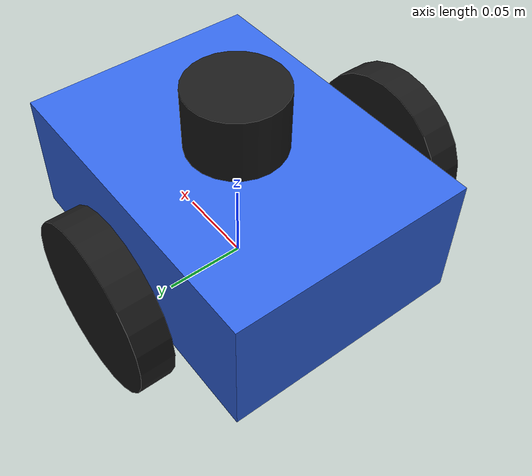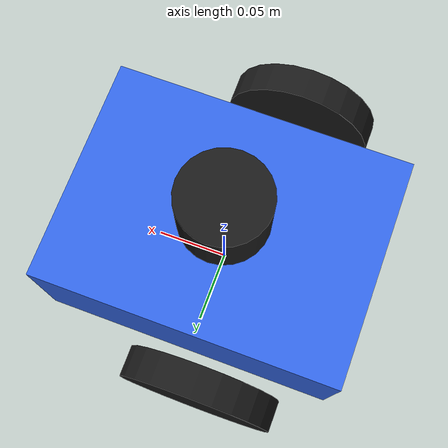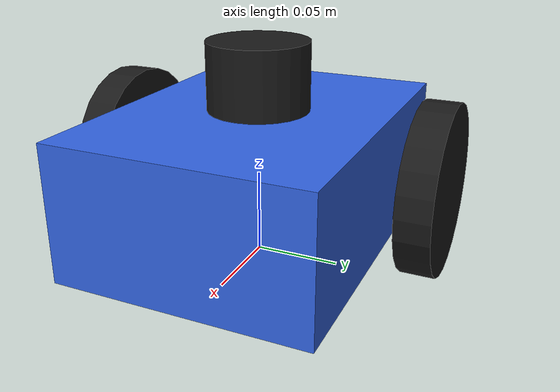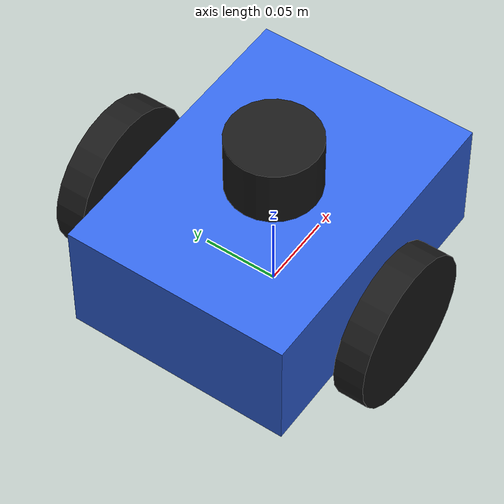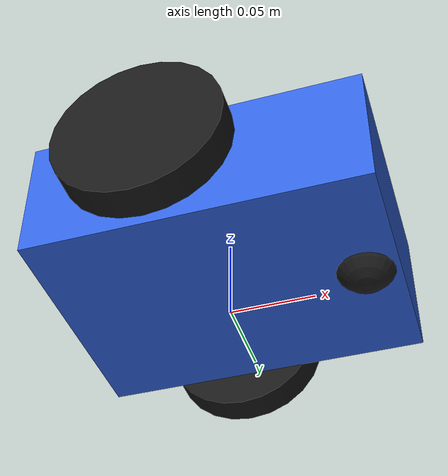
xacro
<?xml version="1.0"?>
<robot name="my_robot" xmlns:xacro="http://www.ros.org/wiki/xacro">

  <!-- ============ Tunable dimensions ============ -->
  <xacro:property name="chassis_x" value="0.20"/>
  <xacro:property name="chassis_y" value="0.15"/>
  <xacro:property name="chassis_z" value="0.08"/>
  <xacro:property name="chassis_mass" value="1.0"/>

  <xacro:property name="wheel_radius" value="0.05"/>
  <xacro:property name="wheel_width" value="0.02"/>
  <xacro:property name="wheel_mass" value="0.1"/>
  <xacro:property name="wheel_separation" value="0.20"/>

  <xacro:property name="wheel_x_offset" value="-0.02"/>

  <xacro:property name="caster_radius" value="0.02"/>
  <xacro:property name="caster_x_offset" value="0.08"/>

  <xacro:property name="lidar_radius" value="0.03"/>
  <xacro:property name="lidar_height" value="0.04"/>

  <!-- base_footprint -->
  <link name="base_footprint"/>

  <!-- ============ Chassis ============ -->
  <link name="base_link">
    <visual>
      <geometry>
        <box size="${chassis_x} ${chassis_y} ${chassis_z}"/>
      </geometry>
      <material name="blue">
        <color rgba="0.2 0.4 0.9 1.0"/>
      </material>
    </visual>
    <collision>
      <geometry>
        <box size="${chassis_x} ${chassis_y} ${chassis_z}"/>
      </geometry>
    </collision>
    <inertial>
      <mass value="${chassis_mass}"/>
      <inertia ixx="0.01" ixy="0.0" ixz="0.0" iyy="0.01" iyz="0.0" izz="0.01"/>
    </inertial>
  </link>

  <joint name="base_joint" type="fixed">
    <parent link="base_footprint"/>
    <child link="base_link"/>
    <!-- chassis center -->
    <origin xyz="0 0 ${wheel_radius}" rpy="0 0 0"/>
  </joint>

  <!-- ============ Wheel macro ============ -->
  <xacro:macro name="wheel" params="prefix y_offset">
    <link name="${prefix}_wheel_link">
      <visual>
        <origin xyz="0 0 0" rpy="1.5708 0 0"/>
        <geometry>
          <cylinder radius="${wheel_radius}" length="${wheel_width}"/>
        </geometry>
        <material name="black">
          <color rgba="0.1 0.1 0.1 1.0"/>
        </material>
      </visual>
      <collision>
        <origin xyz="0 0 0" rpy="1.5708 0 0"/>
        <geometry>
          <cylinder radius="${wheel_radius}" length="${wheel_width}"/>
        </geometry>
      </collision>
      <inertial>
        <mass value="${wheel_mass}"/>
        <inertia ixx="0.0005" ixy="0.0" ixz="0.0" iyy="0.0005" iyz="0.0" izz="0.0005"/>
      </inertial>
    </link>

    <joint name="${prefix}_wheel_joint" type="continuous">
      <parent link="base_link"/>
      <child link="${prefix}_wheel_link"/>
      <origin xyz="${wheel_x_offset} ${y_offset} 0" rpy="0 0 0"/>
      <axis xyz="0 1 0"/>
    </joint>
  </xacro:macro>

  <xacro:wheel prefix="left" y_offset="${wheel_separation/2}"/>
  <xacro:wheel prefix="right" y_offset="${-wheel_separation/2}"/>

  <!-- ============ Caster ============ -->
  <link name="caster_link">
    <visual>
      <geometry>
        <sphere radius="${caster_radius}"/>
      </geometry>
      <material name="black"/>
    </visual>
    <collision>
      <geometry>
        <sphere radius="${caster_radius}"/>
      </geometry>
    </collision>
    <inertial>
      <mass value="0.05"/>
      <inertia ixx="0.0001" ixy="0.0" ixz="0.0" iyy="0.0001" iyz="0.0" izz="0.0001"/>
    </inertial>
  </link>

  <joint name="caster_joint" type="fixed">
    <parent link="base_link"/>
    <child link="caster_link"/>
    <origin xyz="${caster_x_offset} 0 ${-(wheel_radius - caster_radius)}" rpy="0 0 0"/>
  </joint>

  <!-- Low friction on caster -->
  <gazebo reference="caster_link">
    <mu1>0.01</mu1>
    <mu2>0.01</mu2>
  </gazebo>

  <!-- ============ LIDAR ============ -->
  <link name="lidar_link">
    <visual>
      <geometry>
        <cylinder radius="${lidar_radius}" length="${lidar_height}"/>
      </geometry>
      <material name="black"/>
    </visual>
    <collision>
      <geometry>
        <cylinder radius="${lidar_radius}" length="${lidar_height}"/>
      </geometry>
    </collision>
    <inertial>
      <mass value="0.1"/>
      <inertia ixx="0.0001" ixy="0.0" ixz="0.0" iyy="0.0001" iyz="0.0" izz="0.0001"/>
    </inertial>
  </link>

  <joint name="lidar_joint" type="fixed">
    <parent link="base_link"/>
    <child link="lidar_link"/>
    <origin xyz="0 0 ${chassis_z/2 + lidar_height/2}" rpy="0 0 0"/>
  </joint>

  <gazebo reference="lidar_link">
    <sensor name="lidar" type="gpu_lidar">
      <pose>0 0 0 0 0 0</pose>
      <topic>scan</topic>
      <update_rate>10</update_rate>
      <always_on>true</always_on>
      <visualize>true</visualize>
      <lidar>
        <scan>
          <horizontal>
            <samples>360</samples>
            <resolution>1</resolution>
            <min_angle>-3.14159</min_angle>
            <max_angle>3.14159</max_angle>
          </horizontal>
        </scan>
        <range>
          <min>0.12</min>
          <max>10.0</max>
          <resolution>0.01</resolution>
        </range>
      </lidar>
    </sensor>
  </gazebo>

  <!-- ============ Differential drive + Odometry plugin ============ -->
  <gazebo>
    <plugin filename="gz-sim-diff-drive-system" name="gz::sim::systems::DiffDrive">
      <left_joint>left_wheel_joint</left_joint>
      <right_joint>right_wheel_joint</right_joint>
      <wheel_separation>${wheel_separation}</wheel_separation>
      <wheel_radius>${wheel_radius}</wheel_radius>
      <odom_publish_frequency>30</odom_publish_frequency>
      <topic>cmd_vel</topic>
      <odom_topic>odom</odom_topic>
      <tf_topic>tf</tf_topic>
      <frame_id>odom</frame_id>
      <child_frame_id>base_footprint</child_frame_id>
    </plugin>

    <!-- Publish ground-truth joint states for robot_state_publisher / rviz -->
    <plugin filename="gz-sim-joint-state-publisher-system" name="gz::sim::systems::JointStatePublisher">
    </plugin>
  </gazebo>

</robot>
